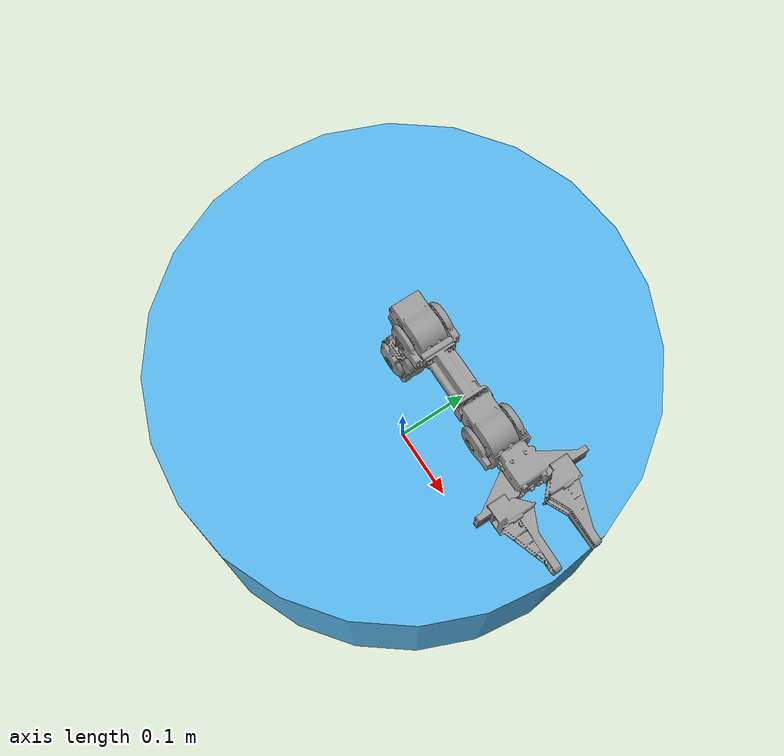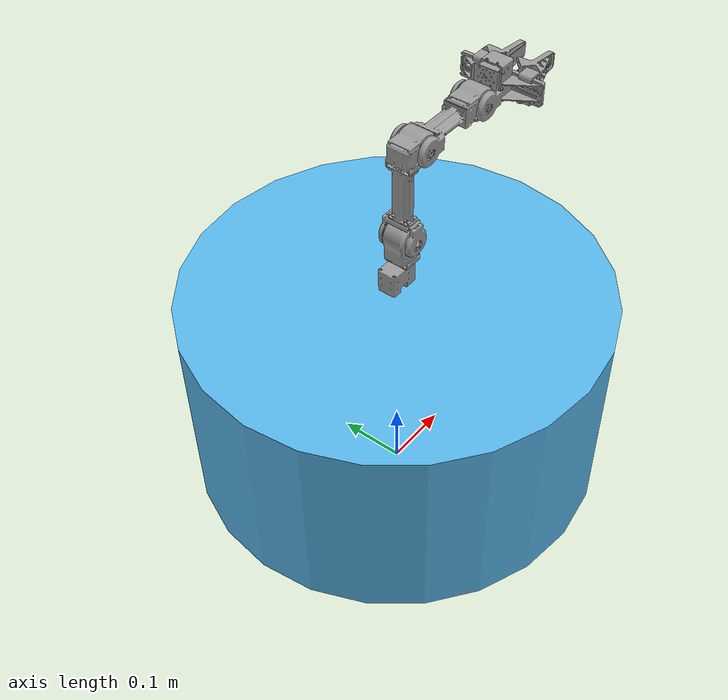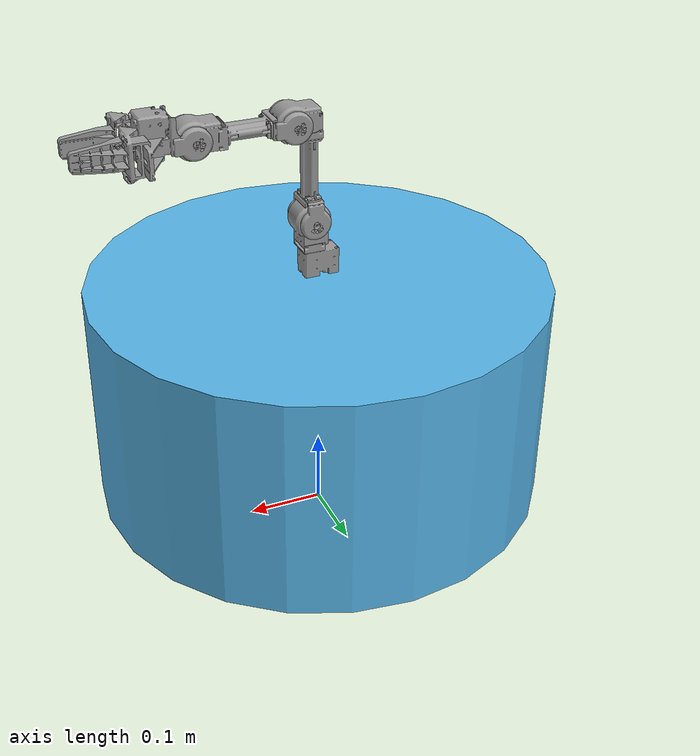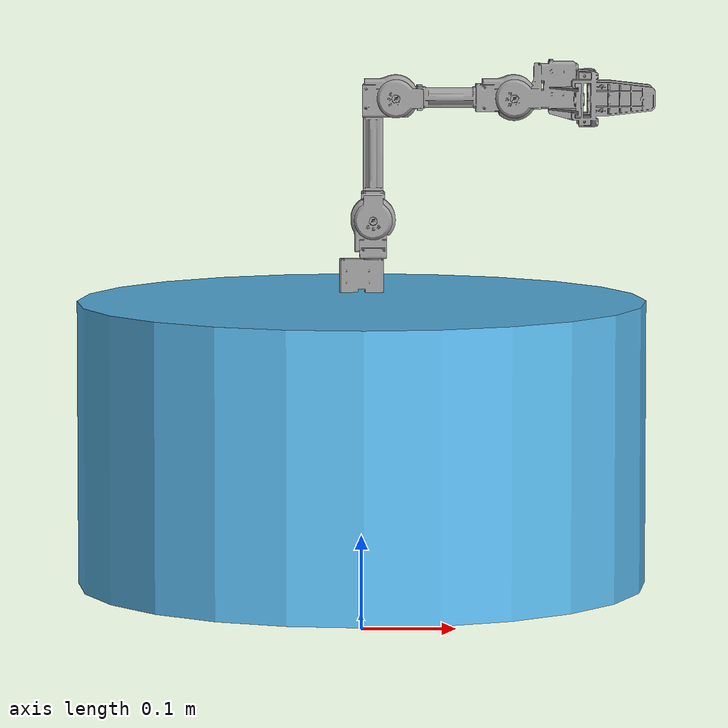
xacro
<?xml version="1.0"?>
<robot name="open_manipulator" xmlns:xacro="http://ros.org/wiki/xacro">
  <xacro:include filename="$(find open_manipulator_description)/urdf/materials.xacro" />
  <xacro:include filename="$(find open_manipulator_description)/urdf/open_manipulator.xacro" />
  <xacro:include filename="$(find open_manipulator_description)/urdf/ros2_control.xacro" />

  <xacro:property name="base_link_hight" value="0.3"/>
  <xacro:property name="base_link_radius" value="0.3"/>
  <xacro:property name="offset_from_ground_to_base_link" value="${base_link_hight/2 + 0.05}"/>
  <xacro:property name="offset_from_base_link_link1" value="${base_link_hight/2 + 0.01}"/>

  <link name="world"/>
  <link name="base_link">
      <visual>
        <geometry>
          <cylinder length="${base_link_hight}" radius="${base_link_radius}"/>
        </geometry>
      </visual>
      <collision>
        <geometry>
          <cylinder length="${base_link_hight}" radius="${base_link_radius}"/>
        </geometry>
      </collision>
   </link>

  <joint name="world_fixed" type="fixed">
    <origin xyz="0 0 ${offset_from_ground_to_base_link}" rpy="0 0 0"/>
    <parent link="world"/>
    <child link="base_link"/>
  </joint>

  <joint name="based_fixed" type="fixed">
    <origin xyz="0 0 ${offset_from_base_link_link1}" rpy="0 0 0"/>
    <parent link="base_link"/>
    <child link="link1"/>
  </joint>

  <link name="gripper_sub_mimic_link"/>
  <joint name="gripper_sub_mimic" type="fixed">
    <origin xyz="0 0 0" rpy="0 0 0"/>
    <parent link="world"/>
    <child link="gripper_sub_mimic_link"/>
  </joint>
</robot>

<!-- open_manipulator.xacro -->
<robot xmlns:xacro="http://ros.org/wiki/xacro">

  <link name="link1">
    <visual>
      <origin xyz="0 0 0" rpy="0 0 0"/>
      <geometry>
        <mesh filename="file://$(find open_manipulator_description)/meshes/chain_link1.stl" scale="0.001 0.001 0.001"/>
      </geometry>
      <material name="grey"/>
    </visual>

    <collision>
      <origin xyz="0 0 0" rpy="0 0 0"/>
      <geometry>
        <mesh filename="file://$(find open_manipulator_description)/meshes/chain_link1.stl" scale="0.001 0.001 0.001"/>
      </geometry>
    </collision>

    <inertial>
      <origin xyz="3.0876154e-04 0.0000000e+00 -1.2176461e-04" />
      <mass value="7.9119962e-02" />
      <inertia ixx="1.2505234e-05" ixy="0.0" ixz="-1.7855208e-07"
               iyy="2.1898364e-05" iyz="0.0"
               izz="1.9267361e-05" />
    </inertial>
  </link>

  <joint name="joint1" type="revolute">
    <parent link="link1"/>
    <child link="link2"/>
    <origin xyz="0.012 0.0 0.017" rpy="0 0 0"/>
    <axis xyz="0 0 1"/>
    <dynamics damping="0.7" friction="1.0"/>
    <limit velocity="4.8" effort="1" lower="${-pi*0.9}" upper="${pi*0.9}" />
  </joint>

  <link name="link2">
    <visual>
      <origin xyz="0 0 0.019" rpy="0 0 0"/>
      <geometry>
        <mesh filename="file://$(find open_manipulator_description)/meshes/chain_link2.stl" scale="0.001 0.001 0.001"/>
      </geometry>
      <material name="grey"/>
    </visual>

    <collision>
      <origin xyz="0 0 0.019" rpy="0 0 0"/>
      <geometry>
        <mesh filename="file://$(find open_manipulator_description)/meshes/chain_link2.stl" scale="0.001 0.001 0.001"/>
      </geometry>
    </collision>

    <inertial>
      <origin xyz="-3.0184870e-04 5.4043684e-04 ${0.018 + 2.9433464e-02}" />
      <mass value="9.8406837e-02" />
      <inertia ixx="3.4543422e-05" ixy="-1.6031095e-08" ixz="-3.8375155e-07"
               iyy="3.2689329e-05" iyz="2.8511935e-08"
               izz="1.8850320e-05" />
    </inertial>
  </link>

  <joint name="joint2" type="revolute">
    <parent link="link2"/>
    <child link="link3"/>
    <origin xyz="0.0 0.0 0.0595" rpy="0 0 0"/>
    <axis xyz="0 1 0"/>
    <dynamics damping="0.7" friction="1.0"/>
    <limit velocity="4.8" effort="1" lower="${-pi*0.57}" upper="${pi*0.5}" />
  </joint>

  <link name="link3">
    <visual>
      <origin xyz="0 0 0" rpy="0 0 0"/>
      <geometry>
        <mesh filename="file://$(find open_manipulator_description)/meshes/chain_link3.stl" scale="0.001 0.001 0.001"/>
      </geometry>
      <material name="grey"/>
    </visual>

    <collision>
      <origin xyz="0 0 0" rpy="0 0 0"/>
      <geometry>
        <mesh filename="file://$(find open_manipulator_description)/meshes/chain_link3.stl" scale="0.001 0.001 0.001"/>
      </geometry>
    </collision>

    <inertial>
      <origin xyz="1.0308393e-02 3.7743363e-04 1.0170197e-01" />
      <mass value="1.3850917e-01" />
      <inertia ixx="3.3055381e-04" ixy="-9.7940978e-08" ixz="-3.8505711e-05"
               iyy="3.4290447e-04" iyz="-1.5717516e-06"
               izz="6.0346498e-05" />
    </inertial>
  </link>

  <joint name="joint3" type="revolute">
    <parent link="link3"/>
    <child link="link4"/>
    <origin xyz="0.024 0 0.128" rpy="0 0 0"/>
    <axis xyz="0 1 0"/>
    <dynamics damping="0.7" friction="1.0"/>
    <limit velocity="4.8" effort="1" lower="${-pi*0.3}" upper="${pi*0.44}" />
  </joint>

  <link name="link4">
    <visual>
      <origin xyz="0 0 0" rpy="0 0 0"/>
      <geometry>
        <mesh filename="file://$(find open_manipulator_description)/meshes/chain_link4.stl" scale="0.001 0.001 0.001"/>
      </geometry>
      <material name="grey"/>
    </visual>

    <collision>
      <origin xyz="0 0 0" rpy="0 0 0"/>
      <geometry>
        <mesh filename="file://$(find open_manipulator_description)/meshes/chain_link4.stl" scale="0.001 0.001 0.001"/>
      </geometry>
    </collision>

    <inertial>
      <origin xyz="9.0909590e-02 3.8929816e-04 2.2413279e-04" />
      <mass value="1.3274562e-01" />
      <inertia ixx="3.0654178e-05" ixy="-1.2764155e-06" ixz="-2.6874417e-07"
               iyy="2.4230292e-04" iyz="1.1559550e-08"
               izz="2.5155057e-04" />
    </inertial>
  </link>

  <joint name="joint4" type="revolute">
    <parent link="link4"/>
    <child link="link5"/>
    <origin xyz="0.124 0.0 0.0" rpy="0 0 0"/>
    <axis xyz="0 1 0"/>
    <dynamics damping="0.7" friction="1.0"/>
    <limit velocity="4.8" effort="1" lower="${-pi*0.57}" upper="${pi*0.65}" />
  </joint>

  <link name="link5">
    <visual>
      <origin xyz="0 0 0" rpy="0 0 0"/>
      <geometry>
        <mesh filename="file://$(find open_manipulator_description)/meshes/chain_link5.stl" scale="0.001 0.001 0.001"/>
      </geometry>
      <material name="grey"/>
    </visual>

    <collision>
      <origin xyz="0 0 0" rpy="0 0 0"/>
      <geometry>
        <mesh filename="file://$(find open_manipulator_description)/meshes/chain_link5.stl" scale="0.001 0.001 0.001"/>
      </geometry>
    </collision>

    <inertial>
      <origin xyz="4.4206755e-02 3.6839985e-07 8.9142216e-03" />
      <mass value="1.4327573e-01" />
      <inertia ixx="8.0870749e-05" ixy="0.0" ixz="-1.0157896e-06"
               iyy="7.5980465e-05" iyz="0.0"
               izz="9.3127351e-05" />
    </inertial>
  </link>

  <joint name="gripper" type="prismatic">
    <parent link="link5"/>
    <child link="gripper_link"/>
    <origin xyz="0.0817 0.021 0.0" rpy="0 0 0"/>
    <axis xyz="0 1 0"/>
    <limit velocity="4.8" effort="1" lower="-0.010" upper="0.019" />
  </joint>

  <link name="gripper_link">
    <visual>
      <origin xyz="0.0 0.0 0" rpy="0 0 0"/>
      <geometry>
        <mesh filename="file://$(find open_manipulator_description)/meshes/chain_link_grip_l.stl" scale="0.001 0.001 0.001"/>
      </geometry>
      <material name="grey"/>
    </visual>

    <collision>
      <origin xyz="0.0 0.0 0" rpy="0 0 0"/>
      <geometry>
        <mesh filename="file://$(find open_manipulator_description)/meshes/chain_link_grip_l.stl" scale="0.001 0.001 0.001"/>
      </geometry>
    </collision>

    <inertial>
      <origin xyz="0 0 0" />
      <mass value="1.0e-03" />
      <inertia ixx="1.0e-03" ixy="0.0" ixz="0.0"
               iyy="1.0e-03" iyz="0.0"
               izz="1.0e-03" />
    </inertial>
  </link>

  <joint name="gripper_sub" type="prismatic">
    <parent link="link5"/>
    <child link="gripper_link_sub"/>
    <origin xyz="0.0817 -0.021 0" rpy="0 0 0"/>
    <axis xyz="0 -1 0"/>
    <limit velocity="4.8" effort="1" lower="-0.010" upper="0.019" />
    <mimic joint="gripper" multiplier="1"/>
  </joint>

  <link name="gripper_link_sub">
    <visual>
      <origin xyz="0.0 -0.0 0" rpy="0 0 0"/>
      <geometry>
        <mesh filename="file://$(find open_manipulator_description)/meshes/chain_link_grip_r.stl" scale="0.001 0.001 0.001"/>
      </geometry>
      <material name="grey"/>
    </visual>

    <collision>
      <origin xyz="0.0 -0.0 0" rpy="0 0 0"/>
      <geometry>
        <mesh filename="file://$(find open_manipulator_description)/meshes/chain_link_grip_r.stl" scale="0.001 0.001 0.001"/>
      </geometry>
    </collision>

    <inertial>
      <origin xyz="0 0 0" />
      <mass value="1.0e-03" />
      <inertia ixx="1.0e-03" ixy="0.0" ixz="0.0"
               iyy="1.0e-03" iyz="0.0"
               izz="1.0e-03" />
    </inertial>
  </link>

  <link name="end_efector_link" />
  <joint name="end_efector" type="fixed">
    <parent link="link5"/>
    <child link="end_efector_link"/>
    <origin xyz="0.1 0.0 0.0" rpy="0 0 0"/>
  </joint>
</robot>
